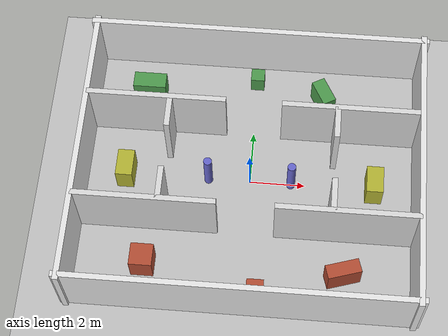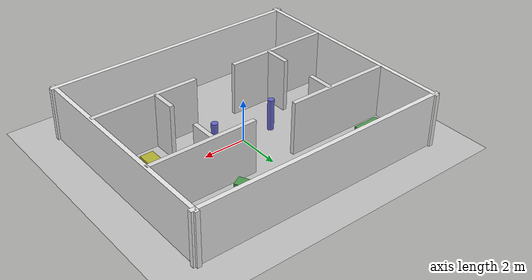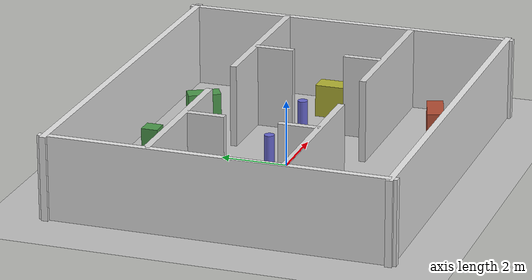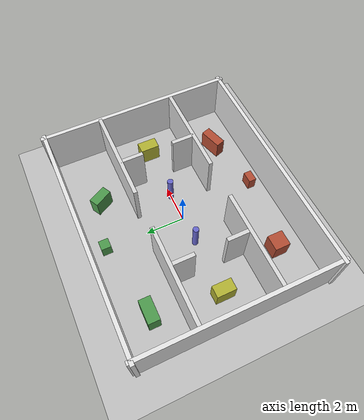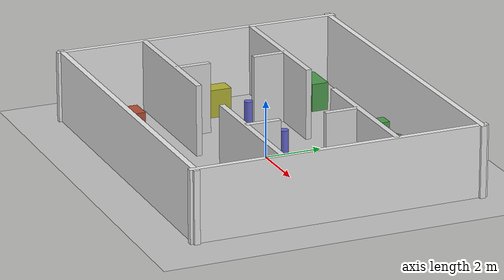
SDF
<?xml version="1.0" ?>
<sdf version="1.6">
  <world name="slam_office">

    <physics name="1ms" type="ignored">
      <max_step_size>0.001</max_step_size>
      <real_time_factor>1.0</real_time_factor>
    </physics>

    <plugin filename="gz-sim-physics-system"
            name="gz::sim::systems::Physics"/>
    <plugin filename="gz-sim-user-commands-system"
            name="gz::sim::systems::UserCommands"/>
    <plugin filename="gz-sim-scene-broadcaster-system"
            name="gz::sim::systems::SceneBroadcaster"/>
    <plugin filename="gz-sim-contact-system"
            name="gz::sim::systems::Contact"/>
    <plugin filename="gz-sim-sensors-system"
            name="gz::sim::systems::Sensors">
      <render_engine>ogre2</render_engine>
    </plugin>

    <!-- Lighting -->
    <light type="directional" name="sun">
      <cast_shadows>true</cast_shadows>
      <pose>0 0 10 0 0 0</pose>
      <diffuse>0.9 0.9 0.9 1</diffuse>
      <specular>0.3 0.3 0.3 1</specular>
      <attenuation>
        <range>1000</range>
        <constant>0.9</constant>
        <linear>0.01</linear>
        <quadratic>0.001</quadratic>
      </attenuation>
      <direction>-0.5 0.1 -0.9</direction>
    </light>

    <!-- Ground plane -->
    <model name="ground_plane">
      <static>true</static>
      <link name="link">
        <collision name="collision">
          <geometry><plane><normal>0 0 1</normal><size>100 100</size></plane></geometry>
        </collision>
        <visual name="visual">
          <geometry><plane><normal>0 0 1</normal><size>100 100</size></plane></geometry>
          <material>
            <ambient>0.75 0.75 0.75 1</ambient>
            <diffuse>0.75 0.75 0.75 1</diffuse>
          </material>
        </visual>
      </link>
    </model>

    <model name="wall_north">
      <static>true</static><pose>0 5 1.25 0 0 0</pose>
      <link name="link">
        <collision name="c"><geometry><box><size>12.4 0.2 2.5</size></box></geometry></collision>
        <visual name="v"><geometry><box><size>12.4 0.2 2.5</size></box></geometry>
          <material><ambient>0.9 0.9 0.9 1</ambient><diffuse>0.9 0.9 0.9 1</diffuse></material>
        </visual>
      </link>
    </model>

    <model name="wall_south">
      <static>true</static><pose>0 -5 1.25 0 0 0</pose>
      <link name="link">
        <collision name="c"><geometry><box><size>12.4 0.2 2.5</size></box></geometry></collision>
        <visual name="v"><geometry><box><size>12.4 0.2 2.5</size></box></geometry>
          <material><ambient>0.9 0.9 0.9 1</ambient><diffuse>0.9 0.9 0.9 1</diffuse></material>
        </visual>
      </link>
    </model>

    <model name="wall_west">
      <static>true</static><pose>-6 0 1.25 0 0 0</pose>
      <link name="link">
        <collision name="c"><geometry><box><size>0.2 10.4 2.5</size></box></geometry></collision>
        <visual name="v"><geometry><box><size>0.2 10.4 2.5</size></box></geometry>
          <material><ambient>0.9 0.9 0.9 1</ambient><diffuse>0.9 0.9 0.9 1</diffuse></material>
        </visual>
      </link>
    </model>

    <model name="wall_east">
      <static>true</static><pose>6 0 1.25 0 0 0</pose>
      <link name="link">
        <collision name="c"><geometry><box><size>0.2 10.4 2.5</size></box></geometry></collision>
        <visual name="v"><geometry><box><size>0.2 10.4 2.5</size></box></geometry>
          <material><ambient>0.9 0.9 0.9 1</ambient><diffuse>0.9 0.9 0.9 1</diffuse></material>
        </visual>
      </link>
    </model>

    <!-- North divider — left of door (x: -6 .. -1) length=5, center=(-3.5, 2) -->
    <model name="div_north_left">
      <static>true</static><pose>-3.5 2 1.25 0 0 0</pose>
      <link name="link">
        <collision name="c"><geometry><box><size>5.0 0.2 2.5</size></box></geometry></collision>
        <visual name="v"><geometry><box><size>5.0 0.2 2.5</size></box></geometry>
          <material><ambient>0.85 0.85 0.85 1</ambient><diffuse>0.85 0.85 0.85 1</diffuse></material>
        </visual>
      </link>
    </model>

    <!-- North divider — right of door (x: 1 .. 6) length=5, center=(3.5, 2) -->
    <model name="div_north_right">
      <static>true</static><pose>3.5 2 1.25 0 0 0</pose>
      <link name="link">
        <collision name="c"><geometry><box><size>5.0 0.2 2.5</size></box></geometry></collision>
        <visual name="v"><geometry><box><size>5.0 0.2 2.5</size></box></geometry>
          <material><ambient>0.85 0.85 0.85 1</ambient><diffuse>0.85 0.85 0.85 1</diffuse></material>
        </visual>
      </link>
    </model>

    <!-- South divider — left of door -->
    <model name="div_south_left">
      <static>true</static><pose>-3.5 -2 1.25 0 0 0</pose>
      <link name="link">
        <collision name="c"><geometry><box><size>5.0 0.2 2.5</size></box></geometry></collision>
        <visual name="v"><geometry><box><size>5.0 0.2 2.5</size></box></geometry>
          <material><ambient>0.85 0.85 0.85 1</ambient><diffuse>0.85 0.85 0.85 1</diffuse></material>
        </visual>
      </link>
    </model>

    <!-- South divider — right of door -->
    <model name="div_south_right">
      <static>true</static><pose>3.5 -2 1.25 0 0 0</pose>
      <link name="link">
        <collision name="c"><geometry><box><size>5.0 0.2 2.5</size></box></geometry></collision>
        <visual name="v"><geometry><box><size>5.0 0.2 2.5</size></box></geometry>
          <material><ambient>0.85 0.85 0.85 1</ambient><diffuse>0.85 0.85 0.85 1</diffuse></material>
        </visual>
      </link>
    </model>

    <!-- West vertical divider — top half (y: 0.8..2) length=1.2, center=(-3, 1.4) -->
    <model name="div_west_top">
      <static>true</static><pose>-3 1.4 1.25 0 0 0</pose>
      <link name="link">
        <collision name="c"><geometry><box><size>0.2 1.2 2.5</size></box></geometry></collision>
        <visual name="v"><geometry><box><size>0.2 1.2 2.5</size></box></geometry>
          <material><ambient>0.85 0.85 0.85 1</ambient><diffuse>0.85 0.85 0.85 1</diffuse></material>
        </visual>
      </link>
    </model>

    <!-- West vertical divider — bottom half (y: -2..-0.8) length=1.2, center=(-3, -1.4) -->
    <model name="div_west_bottom">
      <static>true</static><pose>-3 -1.4 1.25 0 0 0</pose>
      <link name="link">
        <collision name="c"><geometry><box><size>0.2 1.2 2.5</size></box></geometry></collision>
        <visual name="v"><geometry><box><size>0.2 1.2 2.5</size></box></geometry>
          <material><ambient>0.85 0.85 0.85 1</ambient><diffuse>0.85 0.85 0.85 1</diffuse></material>
        </visual>
      </link>
    </model>

    <!-- East vertical divider — top half -->
    <model name="div_east_top">
      <static>true</static><pose>3 1.4 1.25 0 0 0</pose>
      <link name="link">
        <collision name="c"><geometry><box><size>0.2 1.2 2.5</size></box></geometry></collision>
        <visual name="v"><geometry><box><size>0.2 1.2 2.5</size></box></geometry>
          <material><ambient>0.85 0.85 0.85 1</ambient><diffuse>0.85 0.85 0.85 1</diffuse></material>
        </visual>
      </link>
    </model>

    <!-- East vertical divider — bottom half -->
    <model name="div_east_bottom">
      <static>true</static><pose>3 -1.4 1.25 0 0 0</pose>
      <link name="link">
        <collision name="c"><geometry><box><size>0.2 1.2 2.5</size></box></geometry></collision>
        <visual name="v"><geometry><box><size>0.2 1.2 2.5</size></box></geometry>
          <material><ambient>0.85 0.85 0.85 1</ambient><diffuse>0.85 0.85 0.85 1</diffuse></material>
        </visual>
      </link>
    </model>

    <!-- Central pillars -->
    <model name="pillar_west">
      <static>true</static><pose>-1.5 0 0.75 0 0 0</pose>
      <link name="link">
        <collision name="c"><geometry><cylinder><radius>0.15</radius><length>1.5</length></cylinder></geometry></collision>
        <visual name="v"><geometry><cylinder><radius>0.15</radius><length>1.5</length></cylinder></geometry>
          <material><ambient>0.4 0.4 0.8 1</ambient><diffuse>0.4 0.4 0.8 1</diffuse></material>
        </visual>
      </link>
    </model>

    <model name="pillar_east">
      <static>true</static><pose>1.5 0 0.75 0 0 0</pose>
      <link name="link">
        <collision name="c"><geometry><cylinder><radius>0.15</radius><length>1.5</length></cylinder></geometry></collision>
        <visual name="v"><geometry><cylinder><radius>0.15</radius><length>1.5</length></cylinder></geometry>
          <material><ambient>0.4 0.4 0.8 1</ambient><diffuse>0.4 0.4 0.8 1</diffuse></material>
        </visual>
      </link>
    </model>

    <!-- Room 1 (top): green boxes simulating furniture -->
    <model name="box_r1_a">
      <static>true</static><pose>-4 3.5 0.5 0 0 0</pose>
      <link name="link">
        <collision name="c"><geometry><box><size>1.2 0.6 1.0</size></box></geometry></collision>
        <visual name="v"><geometry><box><size>1.2 0.6 1.0</size></box></geometry>
          <material><ambient>0.3 0.6 0.3 1</ambient><diffuse>0.3 0.6 0.3 1</diffuse></material>
        </visual>
      </link>
    </model>

    <model name="box_r1_b">
      <static>true</static><pose>2.5 3.5 0.5 0 0 0.5</pose>
      <link name="link">
        <collision name="c"><geometry><box><size>0.5 1.0 1.0</size></box></geometry></collision>
        <visual name="v"><geometry><box><size>0.5 1.0 1.0</size></box></geometry>
          <material><ambient>0.3 0.6 0.3 1</ambient><diffuse>0.3 0.6 0.3 1</diffuse></material>
        </visual>
      </link>
    </model>

    <model name="box_r1_c">
      <static>true</static><pose>0 4.2 0.35 0 0 0</pose>
      <link name="link">
        <collision name="c"><geometry><box><size>0.5 0.5 0.7</size></box></geometry></collision>
        <visual name="v"><geometry><box><size>0.5 0.5 0.7</size></box></geometry>
          <material><ambient>0.3 0.6 0.3 1</ambient><diffuse>0.3 0.6 0.3 1</diffuse></material>
        </visual>
      </link>
    </model>

    <!-- Room 4 (bottom): red/orange boxes -->
    <model name="box_r4_a">
      <static>true</static><pose>-3.5 -3.5 0.5 0 0 0</pose>
      <link name="link">
        <collision name="c"><geometry><box><size>0.8 0.8 1.0</size></box></geometry></collision>
        <visual name="v"><geometry><box><size>0.8 0.8 1.0</size></box></geometry>
          <material><ambient>0.7 0.3 0.2 1</ambient><diffuse>0.7 0.3 0.2 1</diffuse></material>
        </visual>
      </link>
    </model>

    <model name="box_r4_b">
      <static>true</static><pose>3.5 -3.5 0.5 0 0 0.3</pose>
      <link name="link">
        <collision name="c"><geometry><box><size>1.2 0.5 1.0</size></box></geometry></collision>
        <visual name="v"><geometry><box><size>1.2 0.5 1.0</size></box></geometry>
          <material><ambient>0.7 0.3 0.2 1</ambient><diffuse>0.7 0.3 0.2 1</diffuse></material>
        </visual>
      </link>
    </model>

    <model name="box_r4_c">
      <static>true</static><pose>0.5 -4.2 0.35 0 0 0</pose>
      <link name="link">
        <collision name="c"><geometry><box><size>0.6 0.4 0.7</size></box></geometry></collision>
        <visual name="v"><geometry><box><size>0.6 0.4 0.7</size></box></geometry>
          <material><ambient>0.7 0.3 0.2 1</ambient><diffuse>0.7 0.3 0.2 1</diffuse></material>
        </visual>
      </link>
    </model>

    <!-- Room 2 (left): yellow box -->
    <model name="box_r2">
      <static>true</static><pose>-4.5 0 0.5 0 0 0</pose>
      <link name="link">
        <collision name="c"><geometry><box><size>0.6 1.0 1.0</size></box></geometry></collision>
        <visual name="v"><geometry><box><size>0.6 1.0 1.0</size></box></geometry>
          <material><ambient>0.7 0.7 0.2 1</ambient><diffuse>0.7 0.7 0.2 1</diffuse></material>
        </visual>
      </link>
    </model>

    <!-- Room 3 (right): yellow box -->
    <model name="box_r3">
      <static>true</static><pose>4.5 0 0.5 0 0 0</pose>
      <link name="link">
        <collision name="c"><geometry><box><size>0.6 1.0 1.0</size></box></geometry></collision>
        <visual name="v"><geometry><box><size>0.6 1.0 1.0</size></box></geometry>
          <material><ambient>0.7 0.7 0.2 1</ambient><diffuse>0.7 0.7 0.2 1</diffuse></material>
        </visual>
      </link>
    </model>

  </world>
</sdf>
